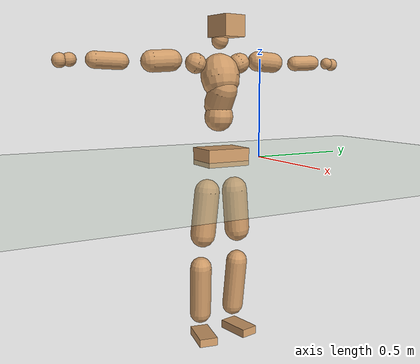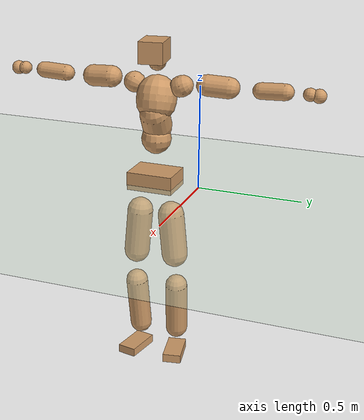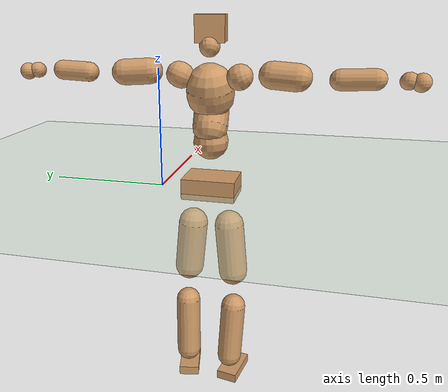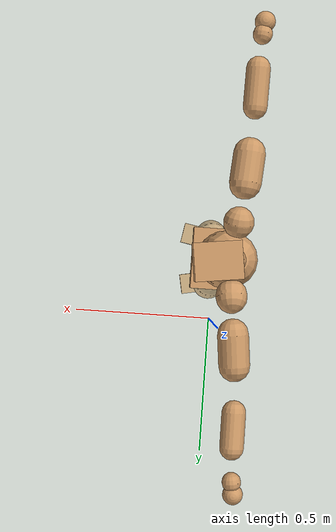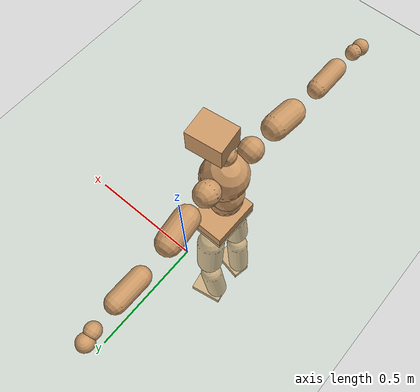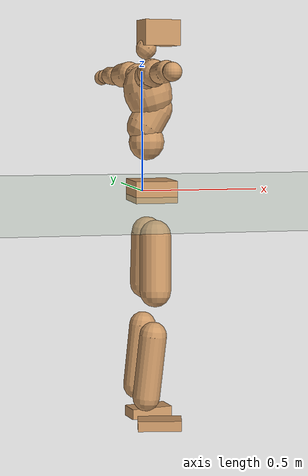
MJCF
<mujoco model="humanoid">
  <compiler coordinate="local" angle="radian"/>
  <default>
    <joint damping="0.0" armature="0.01" stiffness="0.0" limited="true"/>
    <geom conaffinity="1" condim="3" contype="7" margin="0.001" rgba="0.8 0.6 .4 1"/>
  </default>
  <asset>
    <texture type="skybox" builtin="gradient" rgb1=".4 .5 .6" rgb2="0 0 0" width="100" height="100"/>
    <texture builtin="flat" height="1278" mark="cross" markrgb="1 1 1" name="texgeom" random="0.01" rgb1="0.8 0.6 0.4" rgb2="0.8 0.6 0.4" type="cube" width="127"/>
    <texture builtin="checker" height="100" name="texplane" rgb1="0 0 0" rgb2="0.8 0.8 0.8" type="2d" width="100"/>
    <material name="MatPlane" reflectance="0.5" shininess="1" specular="1" texrepeat="60 60" texture="texplane"/>
    <material name="geom" texture="texgeom" texuniform="true"/>
  </asset>
  <worldbody>
    <light cutoff="100" diffuse="1 1 1" dir="-0 0 -1.3" directional="true" exponent="1" pos="0 0 1.3" specular=".1 .1 .1"/>
    <geom conaffinity="1" condim="3" name="floor" pos="0 0 0" rgba="0.8 0.9 0.8 1" size="100 100 .2" type="plane" material="MatPlane"/>
    <body name="Pelvis" pos="0.0006 -0.2249 0.0309">
      <freejoint name="Pelvis"/>
      <geom type="box" contype="1" conaffinity="1" density="5359.375074" pos="-0.0063 0.0000 -0.0135" size="0.0845 0.1135 0.0438" quat="1.0000 0.0000 0.0000 -0.0020" name="Pelvis"/>
      <body name="L_Hip" pos="-0.0083 0.0736 -0.097">
        <joint name="L_Hip_x" type="hinge" pos="0 0 0" axis="1 0 0" stiffness="1600" damping="160" armature="0.02" range="-180.0000 180.0000"/>
        <joint name="L_Hip_y" type="hinge" pos="0 0 0" axis="0 1 0" stiffness="1600" damping="160" armature="0.02" range="-180.0000 180.0000"/>
        <joint name="L_Hip_z" type="hinge" pos="0 0 0" axis="0 0 1" stiffness="1600" damping="160" armature="0.02" range="-180.0000 180.0000"/>
        <geom type="capsule" contype="1" conaffinity="1" density="2040.816327" size="0.0639" fromto="-0.0016 0.0083 -0.0936 -0.0051 0.0272 -0.3071" name="L_Hip"/>
        <body name="L_Knee" pos="-0.0067 0.0355 -0.4007">
          <joint name="L_Knee_x" type="hinge" pos="0 0 0" axis="1 0 0" stiffness="1600" damping="160" armature="0.02" range="-180.0000 180.0000"/>
          <joint name="L_Knee_y" type="hinge" pos="0 0 0" axis="0 1 0" stiffness="1600" damping="160" armature="0.02" range="-180.0000 180.0000"/>
          <joint name="L_Knee_z" type="hinge" pos="0 0 0" axis="0 0 1" stiffness="1600" damping="160" armature="0.02" range="-180.0000 180.0000"/>
          <geom type="capsule" contype="1" conaffinity="1" density="1234.567901" size="0.055" fromto="-0.0094 -0.0025 -0.0845 -0.0376 -0.0099 -0.3385" name="L_Knee"/>
          <body name="L_Ankle" pos="-0.0469 -0.0124 -0.4229">
            <joint name="L_Ankle_x" type="hinge" pos="0 0 0" axis="1 0 0" stiffness="1600" damping="160" armature="0.02" range="-180.0000 180.0000"/>
            <joint name="L_Ankle_y" type="hinge" pos="0 0 0" axis="0 1 0" stiffness="1600" damping="160" armature="0.02" range="-180.0000 180.0000"/>
            <joint name="L_Ankle_z" type="hinge" pos="0 0 0" axis="0 0 1" stiffness="1600" damping="160" armature="0.02" range="-180.0000 180.0000"/>
            <geom type="box" contype="1" conaffinity="1" density="999.999998" pos="0.0610 0.0115 -0.0294" size="0.0868 0.0456 0.0214" quat="0.9957 0.0000 0.0000 0.0931" name="L_Ankle"/>
            <body name="L_Toe" pos="0.1219 0.023 -0.0588">
              <joint name="L_Toe_x" type="hinge" pos="0 0 0" axis="1 0 0" stiffness="1000" damping="100" armature="0.02" range="-180.0000 180.0000"/>
              <joint name="L_Toe_y" type="hinge" pos="0 0 0" axis="0 1 0" stiffness="1000" damping="100" armature="0.02" range="-180.0000 180.0000"/>
              <joint name="L_Toe_z" type="hinge" pos="0 0 0" axis="0 0 1" stiffness="1000" damping="100" armature="0.02" range="-180.0000 180.0000"/>
              <geom type="box" contype="1" conaffinity="1" density="8838152.108695" pos="0.0000 0.0000 0.0291" size="0.0009 0.0023 0.0011" quat="0.9950 0.0000 0.0000 0.0994" name="L_Toe"/>
            </body>
          </body>
        </body>
      </body>
      <body name="R_Hip" pos="-0.0048 -0.0704 -0.0964">
        <joint name="R_Hip_x" type="hinge" pos="0 0 0" axis="1 0 0" stiffness="1600" damping="160" armature="0.02" range="-180.0000 180.0000"/>
        <joint name="R_Hip_y" type="hinge" pos="0 0 0" axis="0 1 0" stiffness="1600" damping="160" armature="0.02" range="-180.0000 180.0000"/>
        <joint name="R_Hip_z" type="hinge" pos="0 0 0" axis="0 0 1" stiffness="1600" damping="160" armature="0.02" range="-180.0000 180.0000"/>
        <geom type="capsule" contype="1" conaffinity="1" density="2040.816327" size="0.0631" fromto="-0.0021 -0.0093 -0.0926 -0.0073 -0.0318 -0.3158" name="R_Hip"/>
        <body name="R_Knee" pos="-0.0094 -0.0412 -0.4084">
          <joint name="R_Knee_x" type="hinge" pos="0 0 0" axis="1 0 0" stiffness="1600" damping="160" armature="0.02" range="-180.0000 180.0000"/>
          <joint name="R_Knee_y" type="hinge" pos="0 0 0" axis="0 1 0" stiffness="1600" damping="160" armature="0.02" range="-180.0000 180.0000"/>
          <joint name="R_Knee_z" type="hinge" pos="0 0 0" axis="0 0 1" stiffness="1600" damping="160" armature="0.02" range="-180.0000 180.0000"/>
          <geom type="capsule" contype="1" conaffinity="1" density="1234.567901" size="0.0553" fromto="-0.0090 0.0031 -0.0847 -0.0361 0.0124 -0.3383" name="R_Knee"/>
          <body name="R_Ankle" pos="-0.0452 0.0155 -0.4231">
            <joint name="R_Ankle_x" type="hinge" pos="0 0 0" axis="1 0 0" stiffness="1600" damping="160" armature="0.02" range="-180.0000 180.0000"/>
            <joint name="R_Ankle_y" type="hinge" pos="0 0 0" axis="0 1 0" stiffness="1600" damping="160" armature="0.02" range="-180.0000 180.0000"/>
            <joint name="R_Ankle_z" type="hinge" pos="0 0 0" axis="0 0 1" stiffness="1600" damping="160" armature="0.02" range="-180.0000 180.0000"/>
            <geom type="box" contype="1" conaffinity="1" density="1000.000066" pos="0.0625 -0.0117 -0.0251" size="0.0881 0.0467 0.0209" quat="0.9957 0.0000 0.0000 -0.0925" name="R_Ankle"/>
            <body name="R_Toe" pos="0.1251 -0.0235 -0.0502">
              <joint name="R_Toe_x" type="hinge" pos="0 0 0" axis="1 0 0" stiffness="1000" damping="100" armature="0.02" range="-180.0000 180.0000"/>
              <joint name="R_Toe_y" type="hinge" pos="0 0 0" axis="0 1 0" stiffness="1000" damping="100" armature="0.02" range="-180.0000 180.0000"/>
              <joint name="R_Toe_z" type="hinge" pos="0 0 0" axis="0 0 1" stiffness="1000" damping="100" armature="0.02" range="-180.0000 180.0000"/>
              <geom type="box" contype="1" conaffinity="1" density="8483189.991409" pos="0.0000 0.0000 0.0274" size="0.0008 0.0023 0.0012" quat="0.9965 0.0000 0.0000 -0.0835" name="R_Toe"/>
            </body>
          </body>
        </body>
      </body>
      <body name="Torso" pos="-0.0249 -0.0031 0.1125">
        <joint name="Torso_x" type="hinge" pos="0 0 0" axis="1 0 0" stiffness="2000" damping="200" armature="0.02" range="-180.0000 180.0000"/>
        <joint name="Torso_y" type="hinge" pos="0 0 0" axis="0 1 0" stiffness="2000" damping="200" armature="0.02" range="-180.0000 180.0000"/>
        <joint name="Torso_z" type="hinge" pos="0 0 0" axis="0 0 1" stiffness="2000" damping="200" armature="0.02" range="-180.0000 180.0000"/>
        <geom type="capsule" contype="1" conaffinity="1" density="2040.816327" size="0.0726" fromto="-0.0017 0.0019 0.0725 -0.0017 0.0018 0.0703" name="Torso"/>
        <body name="Spine" pos="-0.0034 0.0037 0.1428">
          <joint name="Spine_x" type="hinge" pos="0 0 0" axis="1 0 0" stiffness="2000" damping="200" armature="0.02" range="-180.0000 180.0000"/>
          <joint name="Spine_y" type="hinge" pos="0 0 0" axis="0 1 0" stiffness="2000" damping="200" armature="0.02" range="-180.0000 180.0000"/>
          <joint name="Spine_z" type="hinge" pos="0 0 0" axis="0 0 1" stiffness="2000" damping="200" armature="0.02" range="-180.0000 180.0000"/>
          <geom type="capsule" contype="1" conaffinity="1" density="2040.816327" size="0.0719" fromto="0.0365 0.0023 0.0619 -0.0058 -0.0004 -0.0099" name="Spine"/>
          <body name="Chest" pos="0.0307 0.002 0.052">
            <joint name="Chest_x" type="hinge" pos="0 0 0" axis="1 0 0" stiffness="2000" damping="200" armature="0.02" range="-180.0000 180.0000"/>
            <joint name="Chest_y" type="hinge" pos="0 0 0" axis="0 1 0" stiffness="2000" damping="200" armature="0.02" range="-180.0000 180.0000"/>
            <joint name="Chest_z" type="hinge" pos="0 0 0" axis="0 0 1" stiffness="2000" damping="200" armature="0.02" range="-180.0000 180.0000"/>
            <geom type="capsule" contype="1" conaffinity="1" density="2040.816327" size="0.0961" fromto="-0.0272 -0.0003 0.0922 -0.0185 -0.0002 0.0625" name="Chest"/>
            <body name="Neck" pos="-0.0536 -0.0005 0.2189">
              <joint name="Neck_x" type="hinge" pos="0 0 0" axis="1 0 0" stiffness="1000" damping="100" armature="0.02" range="-180.0000 180.0000"/>
              <joint name="Neck_y" type="hinge" pos="0 0 0" axis="0 1 0" stiffness="1000" damping="100" armature="0.02" range="-180.0000 180.0000"/>
              <joint name="Neck_z" type="hinge" pos="0 0 0" axis="0 0 1" stiffness="1000" damping="100" armature="0.02" range="-180.0000 180.0000"/>
              <geom type="capsule" contype="1" conaffinity="1" density="1000" size="0.0413" fromto="0.0259 0.0025 0.0320 0.0247 0.0023 0.0304" name="Neck"/>
              <body name="Head" pos="0.0506 0.0048 0.0624">
                <joint name="Head_x" type="hinge" pos="0 0 0" axis="1 0 0" stiffness="1000" damping="100" armature="0.02" range="-180.0000 180.0000"/>
                <joint name="Head_y" type="hinge" pos="0 0 0" axis="0 1 0" stiffness="1000" damping="100" armature="0.02" range="-180.0000 180.0000"/>
                <joint name="Head_z" type="hinge" pos="0 0 0" axis="0 0 1" stiffness="1000" damping="100" armature="0.02" range="-180.0000 180.0000"/>
                <geom type="box" contype="1" conaffinity="1" density="2249.999896" pos="0.0263 0.0034 0.0322" size="0.0738 0.0585 0.0513" quat="0.9979 0.0000 0.0000 0.0642" name="Head"/>
              </body>
            </body>
            <body name="L_Thorax" pos="-0.0386 0.0763 0.1239">
              <joint name="L_Thorax_x" type="hinge" pos="0 0 0" axis="1 0 0" stiffness="1000" damping="100" armature="0.02" range="-180.0000 180.0000"/>
              <joint name="L_Thorax_y" type="hinge" pos="0 0 0" axis="0 1 0" stiffness="1000" damping="100" armature="0.02" range="-180.0000 180.0000"/>
              <joint name="L_Thorax_z" type="hinge" pos="0 0 0" axis="0 0 1" stiffness="1000" damping="100" armature="0.02" range="-180.0000 180.0000"/>
              <geom type="capsule" contype="1" conaffinity="1" density="1000" size="0.0507" fromto="-0.0031 0.0467 0.0194 -0.0024 0.0359 0.0149" name="L_Thorax"/>
              <body name="L_Shoulder" pos="-0.0055 0.0826 0.0343">
                <joint name="L_Shoulder_x" type="hinge" pos="0 0 0" axis="1 0 0" stiffness="1000" damping="100" armature="0.02" range="-720.0000 720.0000"/>
                <joint name="L_Shoulder_y" type="hinge" pos="0 0 0" axis="0 1 0" stiffness="1000" damping="100" armature="0.02" range="-720.0000 720.0000"/>
                <joint name="L_Shoulder_z" type="hinge" pos="0 0 0" axis="0 0 1" stiffness="1000" damping="100" armature="0.02" range="-720.0000 720.0000"/>
                <geom type="capsule" contype="1" conaffinity="1" density="1000" size="0.051" fromto="-0.0090 0.0804 -0.0044 -0.0204 0.1829 -0.0100" name="L_Shoulder"/>
                <body name="L_Elbow" pos="-0.0294 0.2633 -0.0144">
                  <joint name="L_Elbow_x" type="hinge" pos="0 0 0" axis="1 0 0" stiffness="1000" damping="100" armature="0.02" range="-720.0000 720.0000"/>
                  <joint name="L_Elbow_y" type="hinge" pos="0 0 0" axis="0 1 0" stiffness="1000" damping="100" armature="0.02" range="-720.0000 720.0000"/>
                  <joint name="L_Elbow_z" type="hinge" pos="0 0 0" axis="0 0 1" stiffness="1000" damping="100" armature="0.02" range="-720.0000 720.0000"/>
                  <geom type="capsule" contype="1" conaffinity="1" density="1000" size="0.0391" fromto="0.0001 0.0691 0.0029 0.0002 0.1832 0.0077" name="L_Elbow"/>
                  <body name="L_Wrist" pos="0.0003 0.2523 0.0106">
                    <joint name="L_Wrist_x" type="hinge" pos="0 0 0" axis="1 0 0" stiffness="600" damping="60" armature="0.02" range="-180.0000 180.0000"/>
                    <joint name="L_Wrist_y" type="hinge" pos="0 0 0" axis="0 1 0" stiffness="600" damping="60" armature="0.02" range="-180.0000 180.0000"/>
                    <joint name="L_Wrist_z" type="hinge" pos="0 0 0" axis="0 0 1" stiffness="600" damping="60" armature="0.02" range="-180.0000 180.0000"/>
                    <geom type="capsule" contype="1" conaffinity="1" density="1000" size="0.0309" fromto="-0.0068 0.0400 -0.0049 -0.0071 0.0420 -0.0051" name="L_Wrist"/>
                    <body name="L_Hand" pos="-0.0139 0.082 -0.01">
                      <joint name="L_Hand_x" type="hinge" pos="0 0 0" axis="1 0 0" stiffness="600" damping="60" armature="0.02" range="-180.0000 180.0000"/>
                      <joint name="L_Hand_y" type="hinge" pos="0 0 0" axis="0 1 0" stiffness="600" damping="60" armature="0.02" range="-180.0000 180.0000"/>
                      <joint name="L_Hand_z" type="hinge" pos="0 0 0" axis="0 0 1" stiffness="600" damping="60" armature="0.02" range="-180.0000 180.0000"/>
                      <geom type="sphere" contype="1" conaffinity="1" density="1000" size="0.0331" pos="0.0000 0.0000 0.0000" name="L_Hand"/>
                    </body>
                  </body>
                </body>
              </body>
            </body>
            <body name="R_Thorax" pos="-0.0449 -0.0775 0.1212">
              <joint name="R_Thorax_x" type="hinge" pos="0 0 0" axis="1 0 0" stiffness="1000" damping="100" armature="0.02" range="-180.0000 180.0000"/>
              <joint name="R_Thorax_y" type="hinge" pos="0 0 0" axis="0 1 0" stiffness="1000" damping="100" armature="0.02" range="-180.0000 180.0000"/>
              <joint name="R_Thorax_z" type="hinge" pos="0 0 0" axis="0 0 1" stiffness="1000" damping="100" armature="0.02" range="-180.0000 180.0000"/>
              <geom type="capsule" contype="1" conaffinity="1" density="1000" size="0.0501" fromto="-0.0043 -0.0464 0.0183 -0.0040 -0.0427 0.0169" name="R_Thorax"/>
              <body name="R_Shoulder" pos="-0.0083 -0.0891 0.0352">
                <joint name="R_Shoulder_x" type="hinge" pos="0 0 0" axis="1 0 0" stiffness="1000" damping="100" armature="0.02" range="-720.0000 720.0000"/>
                <joint name="R_Shoulder_y" type="hinge" pos="0 0 0" axis="0 1 0" stiffness="1000" damping="100" armature="0.02" range="-720.0000 720.0000"/>
                <joint name="R_Shoulder_z" type="hinge" pos="0 0 0" axis="0 0 1" stiffness="1000" damping="100" armature="0.02" range="-720.0000 720.0000"/>
                <geom type="capsule" contype="1" conaffinity="1" density="1000" size="0.0525" fromto="-0.0068 -0.0821 -0.0050 -0.0149 -0.1797 -0.0109" name="R_Shoulder"/>
                <body name="R_Elbow" pos="-0.0218 -0.2617 -0.0158">
                  <joint name="R_Elbow_x" type="hinge" pos="0 0 0" axis="1 0 0" stiffness="1000" damping="100" armature="0.02" range="-720.0000 720.0000"/>
                  <joint name="R_Elbow_y" type="hinge" pos="0 0 0" axis="0 1 0" stiffness="1000" damping="100" armature="0.02" range="-720.0000 720.0000"/>
                  <joint name="R_Elbow_z" type="hinge" pos="0 0 0" axis="0 0 1" stiffness="1000" damping="100" armature="0.02" range="-720.0000 720.0000"/>
                  <geom type="capsule" contype="1" conaffinity="1" density="1000" size="0.0394" fromto="-0.0012 -0.0693 0.0027 -0.0032 -0.1937 0.0074" name="R_Elbow"/>
                  <body name="R_Wrist" pos="-0.0044 -0.263 0.0101">
                    <joint name="R_Wrist_x" type="hinge" pos="0 0 0" axis="1 0 0" stiffness="600" damping="60" armature="0.02" range="-180.0000 180.0000"/>
                    <joint name="R_Wrist_y" type="hinge" pos="0 0 0" axis="0 1 0" stiffness="600" damping="60" armature="0.02" range="-180.0000 180.0000"/>
                    <joint name="R_Wrist_z" type="hinge" pos="0 0 0" axis="0 0 1" stiffness="600" damping="60" armature="0.02" range="-180.0000 180.0000"/>
                    <geom type="capsule" contype="1" conaffinity="1" density="1000" size="0.0318" fromto="-0.0053 -0.0409 -0.0036 -0.0056 -0.0429 -0.0038" name="R_Wrist"/>
                    <body name="R_Hand" pos="-0.0109 -0.0837 -0.0073">
                      <joint name="R_Hand_x" type="hinge" pos="0 0 0" axis="1 0 0" stiffness="600" damping="60" armature="0.02" range="-180.0000 180.0000"/>
                      <joint name="R_Hand_y" type="hinge" pos="0 0 0" axis="0 1 0" stiffness="600" damping="60" armature="0.02" range="-180.0000 180.0000"/>
                      <joint name="R_Hand_z" type="hinge" pos="0 0 0" axis="0 0 1" stiffness="600" damping="60" armature="0.02" range="-180.0000 180.0000"/>
                      <geom type="sphere" contype="1" conaffinity="1" density="1000" size="0.0336" pos="0.0000 0.0000 0.0000" name="R_Hand"/>
                    </body>
                  </body>
                </body>
              </body>
            </body>
          </body>
        </body>
      </body>
    </body>
  </worldbody>
  <actuator>
    <motor name="L_Hip_x" joint="L_Hip_x" gear="500"/>
    <motor name="L_Hip_y" joint="L_Hip_y" gear="500"/>
    <motor name="L_Hip_z" joint="L_Hip_z" gear="500"/>
    <motor name="L_Knee_x" joint="L_Knee_x" gear="500"/>
    <motor name="L_Knee_y" joint="L_Knee_y" gear="500"/>
    <motor name="L_Knee_z" joint="L_Knee_z" gear="500"/>
    <motor name="L_Ankle_x" joint="L_Ankle_x" gear="500"/>
    <motor name="L_Ankle_y" joint="L_Ankle_y" gear="500"/>
    <motor name="L_Ankle_z" joint="L_Ankle_z" gear="500"/>
    <motor name="L_Toe_x" joint="L_Toe_x" gear="500"/>
    <motor name="L_Toe_y" joint="L_Toe_y" gear="500"/>
    <motor name="L_Toe_z" joint="L_Toe_z" gear="500"/>
    <motor name="R_Hip_x" joint="R_Hip_x" gear="500"/>
    <motor name="R_Hip_y" joint="R_Hip_y" gear="500"/>
    <motor name="R_Hip_z" joint="R_Hip_z" gear="500"/>
    <motor name="R_Knee_x" joint="R_Knee_x" gear="500"/>
    <motor name="R_Knee_y" joint="R_Knee_y" gear="500"/>
    <motor name="R_Knee_z" joint="R_Knee_z" gear="500"/>
    <motor name="R_Ankle_x" joint="R_Ankle_x" gear="500"/>
    <motor name="R_Ankle_y" joint="R_Ankle_y" gear="500"/>
    <motor name="R_Ankle_z" joint="R_Ankle_z" gear="500"/>
    <motor name="R_Toe_x" joint="R_Toe_x" gear="500"/>
    <motor name="R_Toe_y" joint="R_Toe_y" gear="500"/>
    <motor name="R_Toe_z" joint="R_Toe_z" gear="500"/>
    <motor name="Torso_x" joint="Torso_x" gear="500"/>
    <motor name="Torso_y" joint="Torso_y" gear="500"/>
    <motor name="Torso_z" joint="Torso_z" gear="500"/>
    <motor name="Spine_x" joint="Spine_x" gear="500"/>
    <motor name="Spine_y" joint="Spine_y" gear="500"/>
    <motor name="Spine_z" joint="Spine_z" gear="500"/>
    <motor name="Chest_x" joint="Chest_x" gear="500"/>
    <motor name="Chest_y" joint="Chest_y" gear="500"/>
    <motor name="Chest_z" joint="Chest_z" gear="500"/>
    <motor name="Neck_x" joint="Neck_x" gear="500"/>
    <motor name="Neck_y" joint="Neck_y" gear="500"/>
    <motor name="Neck_z" joint="Neck_z" gear="500"/>
    <motor name="Head_x" joint="Head_x" gear="500"/>
    <motor name="Head_y" joint="Head_y" gear="500"/>
    <motor name="Head_z" joint="Head_z" gear="500"/>
    <motor name="L_Thorax_x" joint="L_Thorax_x" gear="500"/>
    <motor name="L_Thorax_y" joint="L_Thorax_y" gear="500"/>
    <motor name="L_Thorax_z" joint="L_Thorax_z" gear="500"/>
    <motor name="L_Shoulder_x" joint="L_Shoulder_x" gear="500"/>
    <motor name="L_Shoulder_y" joint="L_Shoulder_y" gear="500"/>
    <motor name="L_Shoulder_z" joint="L_Shoulder_z" gear="500"/>
    <motor name="L_Elbow_x" joint="L_Elbow_x" gear="500"/>
    <motor name="L_Elbow_y" joint="L_Elbow_y" gear="500"/>
    <motor name="L_Elbow_z" joint="L_Elbow_z" gear="500"/>
    <motor name="L_Wrist_x" joint="L_Wrist_x" gear="500"/>
    <motor name="L_Wrist_y" joint="L_Wrist_y" gear="500"/>
    <motor name="L_Wrist_z" joint="L_Wrist_z" gear="500"/>
    <motor name="L_Hand_x" joint="L_Hand_x" gear="500"/>
    <motor name="L_Hand_y" joint="L_Hand_y" gear="500"/>
    <motor name="L_Hand_z" joint="L_Hand_z" gear="500"/>
    <motor name="R_Thorax_x" joint="R_Thorax_x" gear="500"/>
    <motor name="R_Thorax_y" joint="R_Thorax_y" gear="500"/>
    <motor name="R_Thorax_z" joint="R_Thorax_z" gear="500"/>
    <motor name="R_Shoulder_x" joint="R_Shoulder_x" gear="500"/>
    <motor name="R_Shoulder_y" joint="R_Shoulder_y" gear="500"/>
    <motor name="R_Shoulder_z" joint="R_Shoulder_z" gear="500"/>
    <motor name="R_Elbow_x" joint="R_Elbow_x" gear="500"/>
    <motor name="R_Elbow_y" joint="R_Elbow_y" gear="500"/>
    <motor name="R_Elbow_z" joint="R_Elbow_z" gear="500"/>
    <motor name="R_Wrist_x" joint="R_Wrist_x" gear="500"/>
    <motor name="R_Wrist_y" joint="R_Wrist_y" gear="500"/>
    <motor name="R_Wrist_z" joint="R_Wrist_z" gear="500"/>
    <motor name="R_Hand_x" joint="R_Hand_x" gear="500"/>
    <motor name="R_Hand_y" joint="R_Hand_y" gear="500"/>
    <motor name="R_Hand_z" joint="R_Hand_z" gear="500"/>
  </actuator>
  <contact>
    <exclude body1="Torso" body2="Chest"/>
    <exclude body1="Head" body2="Chest"/>
    <exclude body1="R_Knee" body2="R_Toe"/>
    <exclude body1="R_Knee" body2="L_Ankle"/>
    <exclude body1="R_Knee" body2="L_Toe"/>
    <exclude body1="L_Knee" body2="L_Toe"/>
    <exclude body1="L_Knee" body2="R_Ankle"/>
    <exclude body1="L_Knee" body2="R_Toe"/>
    <exclude body1="L_Shoulder" body2="Chest"/>
    <exclude body1="R_Shoulder" body2="Chest"/>
  </contact>
  <sensor/>
  <size njmax="700" nconmax="700"/>
</mujoco>
